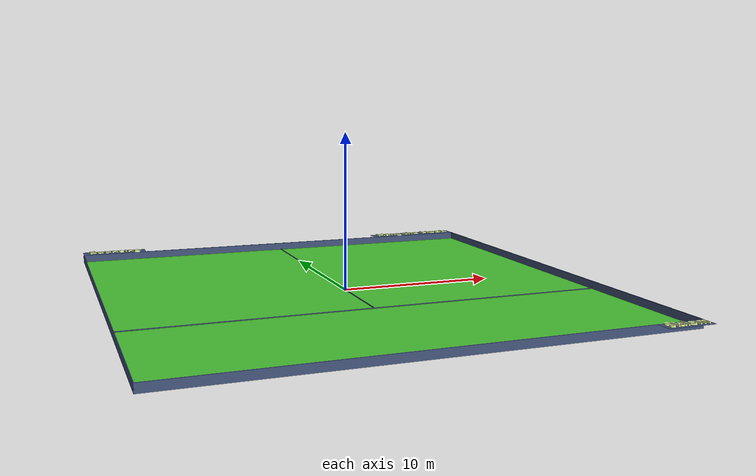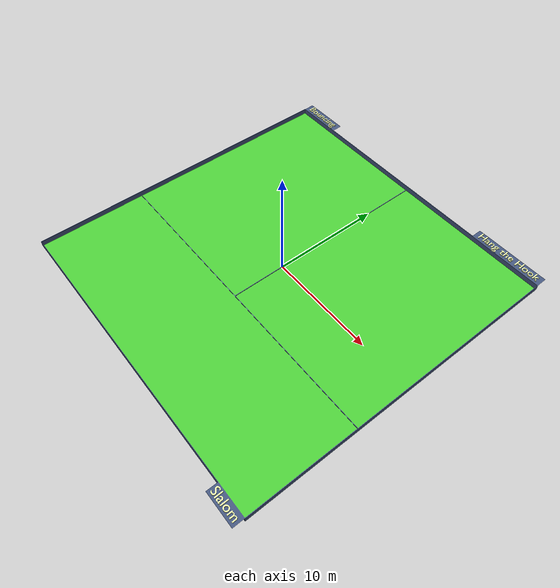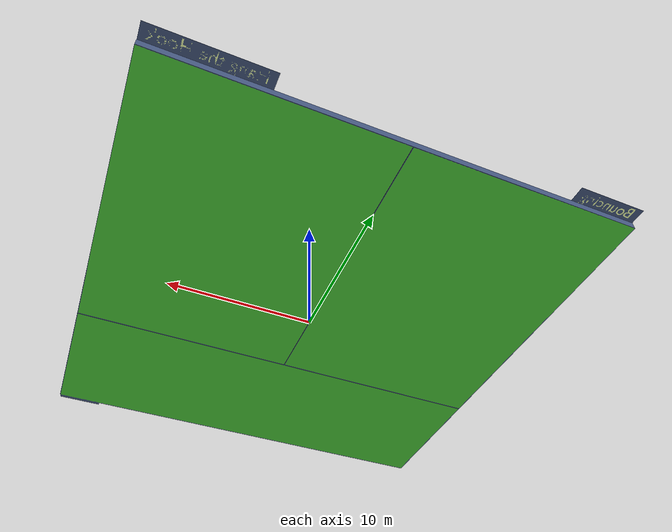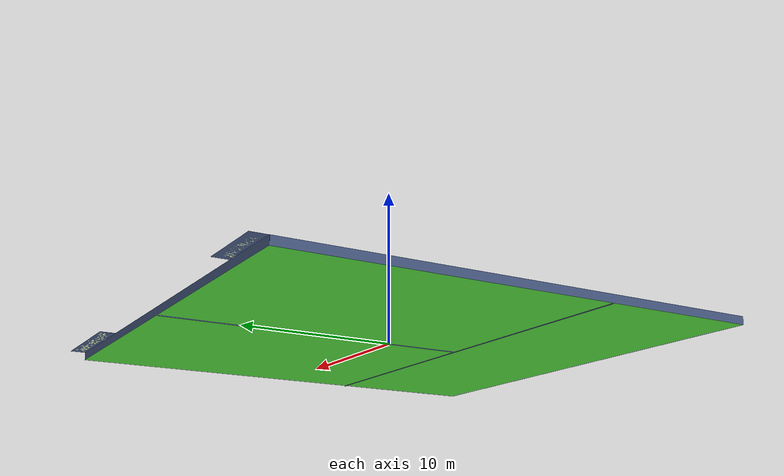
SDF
<?xml version="1.0" ?>
<sdf version="1.5">
  <model name="eletroquad_arena">
    <static>true</static>
    <link name="link">
      <inertial>
        <pose>0 0 0 0 0 0</pose>
        <mass>10.0</mass>
        <inertia>
          <ixx>24.88</ixx>
          <ixy>0</ixy>
          <ixz>0</ixz>
          <iyy>25.73</iyy>
          <iyz>0</iyz>
          <izz>2.48</izz>
        </inertia>
      </inertial>

      <collision name="collision">
        <pose>0 0 0 0 0 0</pose>
        <geometry>
          <mesh>
            <uri>model://eletroquad_arena/meshes/eletroquad_arena.dae</uri>
          </mesh>
        </geometry>
      </collision>

      <visual name="visual">
        <pose>0 0 0 0 0 0</pose>
        <geometry>
          <mesh>
            <uri>model://eletroquad_arena/meshes/eletroquad_arena.dae</uri>
          </mesh>
        </geometry>
      </visual>
    </link>
  </model>
</sdf>
